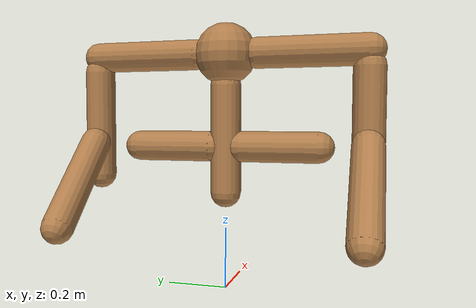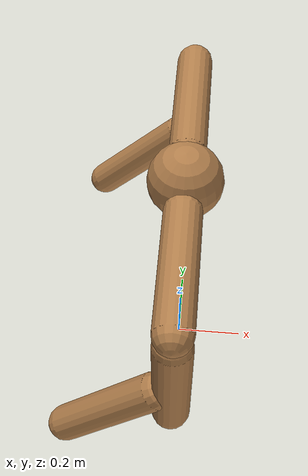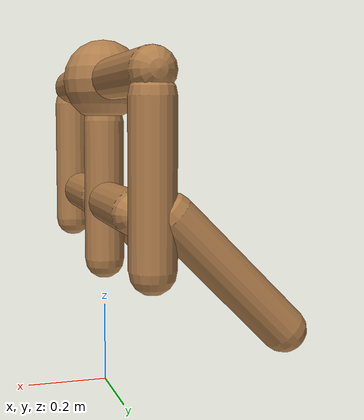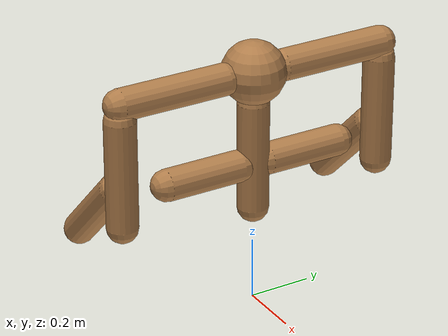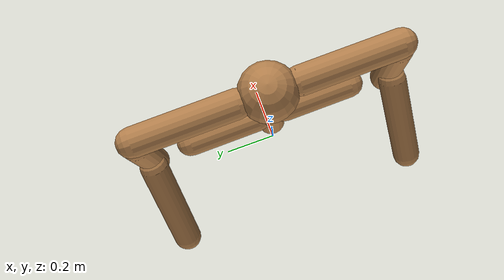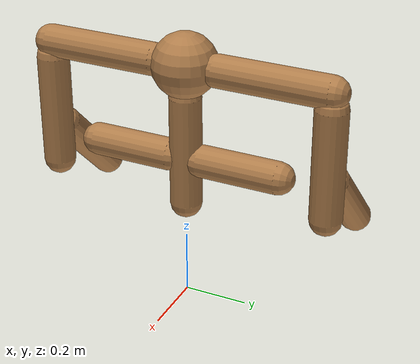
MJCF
<?xml version='1.0' encoding='UTF-8'?>
<!-- Universal Animal Template: unimal -->
<mujoco model="unimal">
  <compiler angle="degree"/>
  <size njmax="2000" nconmax="500"/>
  <option timestep=".005">
    <flag filterparent="disable"/>
  </option>
  <!-- Common defaults to make search space tractable -->
  <default>
    <!-- Define motor defaults -->
    <motor ctrlrange="-1 1" ctrllimited="true"/>
    <!-- Define joint defaults -->
    <default class="normal_joint">
      <joint type="hinge" damping="1" stiffness="1" armature="1" limited="true" range="-120 120" solimplimit="0 0.99 0.01"/>
    </default>
    <default class="walker_joint">
      <joint type="hinge" damping="0.2" stiffness="1" armature=".01" limited="true" range="-120 120" solimplimit="0 0.99 0.01"/>
    </default>
    <default class="stiff_joint">
      <joint type="hinge" damping="5" stiffness="10" armature=".01" limited="true" solimplimit="0 0.99 0.01"/>
    </default>
    <default class="free">
      <joint limited="false" damping="0" armature="0" stiffness="0"/>
    </default>
    <default class="growth_site">
      <site size="1e-6 1e-6 1e-6"/>
    </default>
    <default class="torso_growth_site">
      <site size="1e-6 1e-6 1e-6"/>
    </default>
    <default class="mirror_growth_site">
      <site size="1e-6 1e-6 1e-6"/>
    </default>
    <default class="btm_pos_site">
      <site size="1e-6 1e-6 1e-6"/>
    </default>
    <default class="box_face_site">
      <site size="1e-6 1e-6 1e-6"/>
    </default>
    <default class="imu_vel">
      <site type="box" size="0.05" rgba="1 0 0 0"/>
    </default>
    <default class="touch_site">
      <site group="3" rgba="0 0 1 .3"/>
    </default>
    <default class="food_site">
      <site material="food" size="0.15"/>
    </default>
    <!-- Define geom defaults -->
    <geom type="capsule" condim="3" friction="0.7 0.1 0.1" material="self"/>
  </default>
  <worldbody>
    <light diffuse="1 1 1" directional="true" exponent="1" pos="0 0 8" specular="0.1 0.1 0.1" dir="0 0 -1"/>
    <!-- Programatically generated xml goes here -->
    <body name="torso/0" pos="0 0 0.77">
      <joint name="root" type="free" class="free"/>
      <site name="root" class="imu_vel"/>
      <geom name="torso/0" type="sphere" size="0.1" condim="3" density="800"/>
      <camera name="side" pos="0 -7 2" xyaxes="1 0 0 0 1 2" mode="trackcom"/>
      <site name="torso/0" class="growth_site" pos="0 0 0"/>
      <site name="torso/btm_pos/0" class="btm_pos_site" pos="0 0 -0.1"/>
      <site name="torso/touch/0" class="touch_site" size="0.11"/>
      <site name="torso/vertical/0" class="torso_growth_site" pos="0 0 -0.1"/>
      <body name="limb/14" pos="0.0 0.1 0.0">
        <joint name="limby/14" type="hinge" class="normal_joint" range="-60 0" pos="0.0 -0.05 0.0" axis="0.0 0.0 1.0"/>
        <geom name="limb/14" type="capsule" fromto="0.0 0.0 0.0 0.0 0.35 0.0" size="0.05" density="500"/>
        <site name="limb/mid/14" class="mirror_growth_site" pos="0.0 0.2 0.0"/>
        <site name="limb/btm/14" class="mirror_growth_site" pos="0.0 0.35 0.0"/>
        <site name="limb/btm_pos/14" class="btm_pos_site" pos="0.0 0.35 0.0"/>
        <site name="limb/touch/14" class="touch_site" size="0.060000000000000005" fromto="0.0 0.0 0.0 0.0 0.35 0.0" type="capsule"/>
        <body name="limb/33" pos="0.0 0.35 -0.05">
          <joint name="limby/33" type="hinge" class="normal_joint" range="-45 0" pos="0.0 0.0 0.05" axis="0.0 1.0 0.0"/>
          <geom name="limb/33" type="capsule" fromto="0.0 0.0 0.0 0.0 0.0 -0.35" size="0.05" density="500"/>
          <site name="limb/mid/33" class="mirror_growth_site" pos="0.0 0.0 -0.2"/>
          <site name="limb/btm/33" class="mirror_growth_site" pos="0.0 0.0 -0.35"/>
          <site name="limb/btm_pos/33" class="btm_pos_site" pos="0.0 0.0 -0.35"/>
          <site name="limb/touch/33" class="touch_site" size="0.060000000000000005" fromto="0.0 0.0 0.0 0.0 0.0 -0.35" type="capsule"/>
          <body name="limb/36" pos="-0.04 0.0 -0.24000000000000002">
            <joint name="limbx/36" type="hinge" class="normal_joint" range="0 90" pos="0.04 0.0 0.04" axis="0.7071 0.0 -0.7071"/>
            <joint name="limby/36" type="hinge" class="normal_joint" range="-60 30" pos="0.04 0.0 0.04" axis="0.0 1.0 0.0"/>
            <geom name="limb/36" type="capsule" fromto="0.0 0.0 0.0 -0.25 0.0 -0.25" size="0.05" density="500"/>
            <site name="limb/mid/36" class="mirror_growth_site" pos="-0.14 0.0 -0.14"/>
            <site name="limb/btm/36" class="mirror_growth_site" pos="-0.25 0.0 -0.25"/>
            <site name="limb/btm_pos/36" class="btm_pos_site" pos="-0.28 0.0 -0.28"/>
            <site name="limb/touch/36" class="touch_site" size="0.060000000000000005" fromto="0.0 0.0 0.0 -0.25 0.0 -0.25" type="capsule"/>
          </body>
        </body>
      </body>
      <body name="limb/15" pos="0.0 -0.1 0.0">
        <joint name="limby/15" type="hinge" class="normal_joint" range="-60 0" pos="0.0 0.05 0.0" axis="-0.0 0.0 -1.0"/>
        <geom name="limb/15" type="capsule" fromto="0.0 0.0 0.0 0.0 -0.35 0.0" size="0.05" density="500"/>
        <site name="limb/mid/15" class="mirror_growth_site" pos="0.0 -0.2 0.0"/>
        <site name="limb/btm/15" class="mirror_growth_site" pos="0.0 -0.35 0.0"/>
        <site name="limb/btm_pos/15" class="btm_pos_site" pos="0.0 -0.35 0.0"/>
        <site name="limb/touch/15" class="touch_site" size="0.060000000000000005" fromto="0.0 0.0 0.0 0.0 -0.35 0.0" type="capsule"/>
        <body name="limb/34" pos="0.0 -0.35 -0.05">
          <joint name="limby/34" type="hinge" class="normal_joint" range="-45 0" pos="0.0 0.0 0.05" axis="0.0 1.0 0.0"/>
          <geom name="limb/34" type="capsule" fromto="0.0 0.0 0.0 0.0 0.0 -0.35" size="0.05" density="500"/>
          <site name="limb/mid/34" class="mirror_growth_site" pos="0.0 0.0 -0.2"/>
          <site name="limb/btm/34" class="mirror_growth_site" pos="0.0 0.0 -0.35"/>
          <site name="limb/btm_pos/34" class="btm_pos_site" pos="0.0 0.0 -0.35"/>
          <site name="limb/touch/34" class="touch_site" size="0.060000000000000005" fromto="0.0 0.0 0.0 0.0 0.0 -0.35" type="capsule"/>
          <body name="limb/37" pos="-0.04 0.0 -0.24000000000000002">
            <joint name="limbx/37" type="hinge" class="normal_joint" range="0 90" pos="0.04 0.0 0.04" axis="0.7071 0.0 -0.7071"/>
            <joint name="limby/37" type="hinge" class="normal_joint" range="-60 30" pos="0.04 0.0 0.04" axis="0.0 1.0 0.0"/>
            <geom name="limb/37" type="capsule" fromto="0.0 0.0 0.0 -0.25 0.0 -0.25" size="0.05" density="500"/>
            <site name="limb/mid/37" class="mirror_growth_site" pos="-0.14 0.0 -0.14"/>
            <site name="limb/btm/37" class="mirror_growth_site" pos="-0.25 0.0 -0.25"/>
            <site name="limb/btm_pos/37" class="btm_pos_site" pos="-0.28 0.0 -0.28"/>
            <site name="limb/touch/37" class="touch_site" size="0.060000000000000005" fromto="0.0 0.0 0.0 -0.25 0.0 -0.25" type="capsule"/>
          </body>
        </body>
      </body>
      <body name="limb/35" pos="0.0 0.0 -0.1">
        <joint name="limby/35" type="hinge" class="normal_joint" range="-45 45" pos="0.0 0.0 0.05" axis="0.0 1.0 0.0"/>
        <geom name="limb/35" type="capsule" fromto="0.0 0.0 0.0 0.0 0.0 -0.35" size="0.05" density="500"/>
        <site name="limb/mid/35" class="growth_site" pos="0.0 0.0 -0.2"/>
        <site name="limb/btm/35" class="growth_site" pos="0.0 0.0 -0.35"/>
        <site name="limb/btm_pos/35" class="btm_pos_site" pos="0.0 0.0 -0.4"/>
        <site name="limb/touch/35" class="touch_site" size="0.060000000000000005" fromto="0.0 0.0 0.0 0.0 0.0 -0.35" type="capsule"/>
        <body name="limb/38" pos="0.0 0.05 -0.2">
          <joint name="limbx/38" type="hinge" class="normal_joint" range="0 90" pos="0.0 -0.05 0.0" axis="1.0 0.0 0.0"/>
          <joint name="limby/38" type="hinge" class="normal_joint" range="-30 30" pos="0.0 -0.05 0.0" axis="0.0 0.0 1.0"/>
          <geom name="limb/38" type="capsule" fromto="0.0 0.0 0.0 0.0 0.25 0.0" size="0.05" density="500"/>
          <site name="limb/mid/38" class="mirror_growth_site" pos="0.0 0.15 0.0"/>
          <site name="limb/btm/38" class="mirror_growth_site" pos="0.0 0.25 0.0"/>
          <site name="limb/btm_pos/38" class="btm_pos_site" pos="0.0 0.3 0.0"/>
          <site name="limb/touch/38" class="touch_site" size="0.060000000000000005" fromto="0.0 0.0 0.0 0.0 0.25 0.0" type="capsule"/>
        </body>
        <body name="limb/39" pos="0.0 -0.05 -0.2">
          <joint name="limbx/39" type="hinge" class="normal_joint" range="0 90" pos="0.0 0.05 0.0" axis="1.0 0.0 -0.0"/>
          <joint name="limby/39" type="hinge" class="normal_joint" range="-30 30" pos="0.0 0.05 0.0" axis="-0.0 0.0 -1.0"/>
          <geom name="limb/39" type="capsule" fromto="0.0 0.0 0.0 0.0 -0.25 0.0" size="0.05" density="500"/>
          <site name="limb/mid/39" class="mirror_growth_site" pos="0.0 -0.15 0.0"/>
          <site name="limb/btm/39" class="mirror_growth_site" pos="0.0 -0.25 0.0"/>
          <site name="limb/btm_pos/39" class="btm_pos_site" pos="0.0 -0.3 0.0"/>
          <site name="limb/touch/39" class="touch_site" size="0.060000000000000005" fromto="0.0 0.0 0.0 0.0 -0.25 0.0" type="capsule"/>
        </body>
      </body>
    </body>
  </worldbody>
  <actuator>
    <motor joint="limby/14" gear="150" name="limby/14"/>
    <motor joint="limby/33" gear="250" name="limby/33"/>
    <motor joint="limbx/36" gear="150" name="limbx/36"/>
    <motor joint="limby/36" gear="200" name="limby/36"/>
    <motor joint="limby/15" gear="150" name="limby/15"/>
    <motor joint="limby/34" gear="250" name="limby/34"/>
    <motor joint="limbx/37" gear="150" name="limbx/37"/>
    <motor joint="limby/37" gear="200" name="limby/37"/>
    <motor joint="limby/35" gear="250" name="limby/35"/>
    <motor joint="limbx/38" gear="200" name="limbx/38"/>
    <motor joint="limby/38" gear="300" name="limby/38"/>
    <motor joint="limbx/39" gear="200" name="limbx/39"/>
    <motor joint="limby/39" gear="300" name="limby/39"/>
  </actuator>
  <sensor>
    <accelerometer name="torso_accel" site="root"/>
    <gyro name="torso_gyro" site="root"/>
    <velocimeter name="torso_vel" site="root"/>
    <subtreeangmom name="unimal_am" body="torso/0"/>
    <touch name="torso/0" site="torso/touch/0"/>
    <touch name="limb/14" site="limb/touch/14"/>
    <touch name="limb/33" site="limb/touch/33"/>
    <touch name="limb/36" site="limb/touch/36"/>
    <touch name="limb/15" site="limb/touch/15"/>
    <touch name="limb/34" site="limb/touch/34"/>
    <touch name="limb/37" site="limb/touch/37"/>
    <touch name="limb/35" site="limb/touch/35"/>
    <touch name="limb/38" site="limb/touch/38"/>
    <touch name="limb/39" site="limb/touch/39"/>
  </sensor>
  <!-- Add hfield assets -->
  <asset/>
  <!-- List of contacts to exclude -->
  <contact>
    <exclude name="limb/38:limb/39" body1="limb/38" body2="limb/39"/>
  </contact>
  <!-- Define material, texture etc -->
  <asset>
    <material name="grid" texture="grid" texrepeat="1 1" texuniform="true" reflectance="0.1"/>
    <material name="hfield" texture="hfield" texrepeat="1 1" texuniform="true" reflectance="0.1"/>
    <material name="wall" texture="wall" texrepeat="1 1" texuniform="true" reflectance=".5"/>
    <material name="platform" texture="platform" texrepeat="1 1" texuniform="true" reflectance=".5"/>
    <material name="boundary" texture="boundary" texrepeat="1 1" texuniform="true" reflectance=".5"/>
    <material name="jump" texture="jump" texrepeat="1 1" texuniform="true" reflectance=".5"/>
    <material name="goal" rgba="1 0 0 1"/>
    <material name="food" rgba="0 0 1 1" emission="1"/>
    <material name="init_position" rgba="0 1 0 0.7"/>
    <material name="self" rgba=".7 .5 .3 1"/>
    <material name="self_invisible" rgba=".7 .5 .3 0"/>
    <material name="self_default" rgba=".7 .5 .3 1"/>
    <material name="self_highlight" rgba="0 .5 .3 1"/>
    <material name="effector" rgba=".7 .4 .2 1"/>
    <material name="effector_default" rgba=".7 .4 .2 1"/>
    <material name="effector_highlight" rgba="0 .5 .3 1"/>
    <material name="decoration" rgba=".3 .5 .7 1"/>
    <material name="eye" rgba="0 .2 1 1"/>
    <material name="target" rgba=".6 .3 .3 1"/>
    <material name="target_default" rgba=".6 .3 .3 1"/>
    <material name="target_highlight" rgba=".6 .3 .3 .4"/>
    <material name="site" rgba=".5 .5 .5 .3"/>
    <material name="ball" texture="ball"/>
  </asset>
  <asset>
    <texture name="grid" type="2d" builtin="checker" rgb1="0.4 0.4 0.4" rgb2="0.4 0.4 0.4" width="300" height="300" mark="edge" markrgb="0.2 0.2 0.2"/>
    <texture name="hfield" type="2d" builtin="checker" rgb1="0.4 0.4 0.4" rgb2="0.4 0.4 0.4" width="300" height="300" mark="edge" markrgb="0.2 0.2 0.2"/>
    <texture name="wall" type="2d" builtin="flat" rgb1="0.9 0.7 0" rgb2="0.9 0.7 0" width="300" height="300"/>
    <texture name="platform" type="2d" builtin="flat" rgb1="0.3 0 0.8" rgb2="0.3 0 0.8" width="300" height="300"/>
    <texture name="boundary" type="2d" builtin="flat" rgb1="0.3 0.3 0.3" rgb2="0.3 0.3 0.3" width="300" height="300"/>
    <texture name="jump" type="2d" builtin="flat" rgb1="0.3 0.3 0.3" rgb2="0.3 0.3 0.3" width="300" height="300"/>
    <texture name="skybox" type="skybox" builtin="gradient" rgb1="1 1 1" rgb2="0.6 0.6 0.6" width="800" height="800"/>
    <texture name="ball" builtin="checker" mark="cross" width="151" height="151" rgb1="0.1 0.1 0.1" rgb2="0.9 0.9 0.9" markrgb="1 1 1"/>
  </asset>
  <visual>
    <headlight ambient="0.6 0.6 0.6" diffuse="0.3 0.3 0.3" specular="0 0 0"/>
    <map znear=".01" shadowclip="0.5"/>
    <quality shadowsize="16384"/>
  </visual>
</mujoco>
